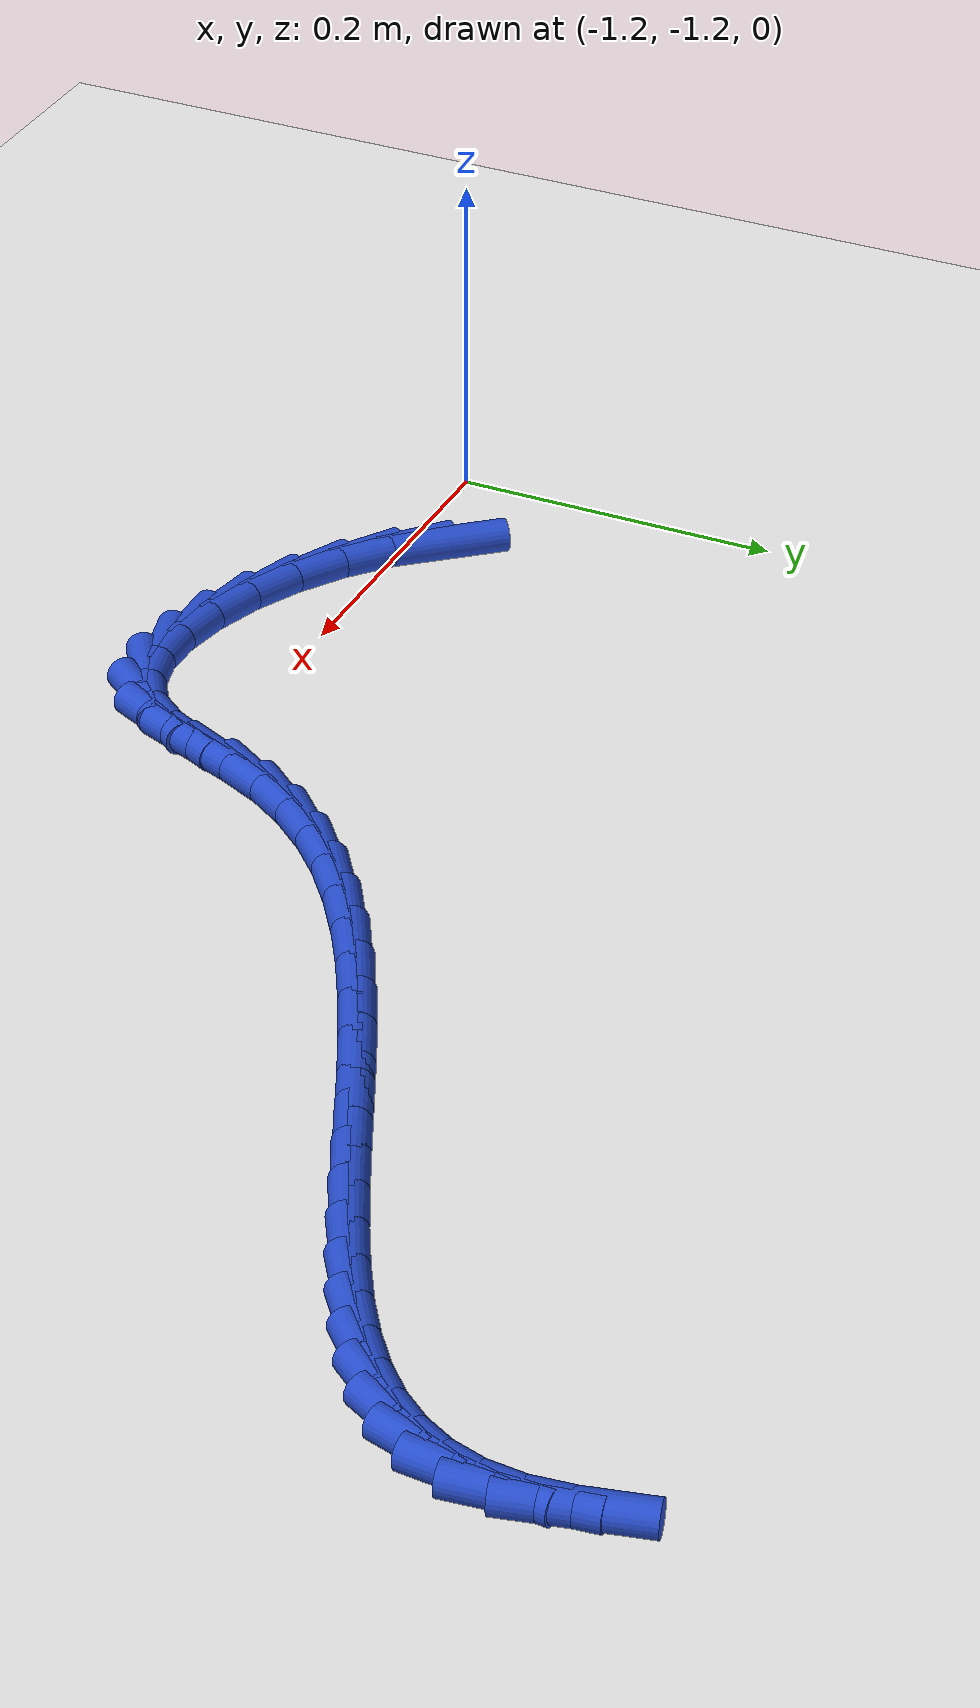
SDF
<sdf version="1.6">
 <world name="default">
  <model name="ground_plane">
   <static>1</static>
   <link name="link">
    <collision name="collision">
     <geometry><plane><normal>0 0 1</normal><size>100 100</size></plane></geometry>
     <surface><friction><ode><mu>100</mu><mu2>50</mu2></ode></friction></surface>
    </collision>
    <visual name="visual">
     <cast_shadows>0</cast_shadows>
     <geometry><plane><normal>0 0 1</normal><size>100 100</size></plane></geometry>
     <material>
      <script><uri>file://media/materials/scripts/gazebo.material</uri><name>Gazebo/WhiteGlow</name></script>
     </material>
    </visual>
   </link>
  </model>
  <model name="line">
   <link name="link_221">
    <pose>-1.1108003090482503 -1.1748294771301653 0.01 0 1.57 -0.8689991256285351</pose>
    <collision name="collision">
     <geometry><cylinder><radius>0.01</radius><length>0.08</length></cylinder></geometry>
    </collision>
    <visual name="visual">
     <material>
      <script><name>Gazebo/Blue</name><uri>file://media/materials/scripts/gazebo.material</uri></script>
     </material>
     <geometry><cylinder><radius>0.01</radius><length>0.08</length></cylinder></geometry>
    </visual>
   </link>
   <link name="link_222">
    <pose>-1.090640683657162 -1.198676713574175 0.01 0 1.57 -0.7108364115734258</pose>
    <collision name="collision">
     <geometry><cylinder><radius>0.01</radius><length>0.08</length></cylinder></geometry>
    </collision>
    <visual name="visual">
     <material>
      <script><name>Gazebo/Blue</name><uri>file://media/materials/scripts/gazebo.material</uri></script>
     </material>
     <geometry><cylinder><radius>0.01</radius><length>0.08</length></cylinder></geometry>
    </visual>
   </link>
   <link name="link_223">
    <pose>-1.0661124544059375 -1.219795127870323 0.01 0 1.57 -0.5735848228336868</pose>
    <collision name="collision">
     <geometry><cylinder><radius>0.01</radius><length>0.08</length></cylinder></geometry>
    </collision>
    <visual name="visual">
     <material>
      <script><name>Gazebo/Blue</name><uri>file://media/materials/scripts/gazebo.material</uri></script>
     </material>
     <geometry><cylinder><radius>0.01</radius><length>0.08</length></cylinder></geometry>
    </visual>
   </link>
   <link name="link_224">
    <pose>-1.0384692837865328 -1.237653661978566 0.01 0 1.57 -0.4449124804448995</pose>
    <collision name="collision">
     <geometry><cylinder><radius>0.01</radius><length>0.08</length></cylinder></geometry>
    </collision>
    <visual name="visual">
     <material>
      <script><name>Gazebo/Blue</name><uri>file://media/materials/scripts/gazebo.material</uri></script>
     </material>
     <geometry><cylinder><radius>0.01</radius><length>0.08</length></cylinder></geometry>
    </visual>
   </link>
   <link name="link_225">
    <pose>-1.0089648342909046 -1.2517212578588608 0.01 0 1.57 -0.3130052605132182</pose>
    <collision name="collision">
     <geometry><cylinder><radius>0.01</radius><length>0.08</length></cylinder></geometry>
    </collision>
    <visual name="visual">
     <material>
      <script><name>Gazebo/Blue</name><uri>file://media/materials/scripts/gazebo.material</uri></script>
     </material>
     <geometry><cylinder><radius>0.01</radius><length>0.08</length></cylinder></geometry>
    </visual>
   </link>
   <link name="link_226">
    <pose>-0.9788527684110084 -1.261466857471164 0.01 0 1.57 -0.1645391295733675</pose>
    <collision name="collision">
     <geometry><cylinder><radius>0.01</radius><length>0.08</length></cylinder></geometry>
    </collision>
    <visual name="visual">
     <material>
      <script><name>Gazebo/Blue</name><uri>file://media/materials/scripts/gazebo.material</uri></script>
     </material>
     <geometry><cylinder><radius>0.01</radius><length>0.08</length></cylinder></geometry>
    </visual>
   </link>
   <link name="link_227">
    <pose>-0.9493867486388008 -1.266359402775432 0.01 0 1.57 0.017830276486228085</pose>
    <collision name="collision">
     <geometry><cylinder><radius>0.01</radius><length>0.08</length></cylinder></geometry>
    </collision>
    <visual name="visual">
     <material>
      <script><name>Gazebo/Blue</name><uri>file://media/materials/scripts/gazebo.material</uri></script>
     </material>
     <geometry><cylinder><radius>0.01</radius><length>0.08</length></cylinder></geometry>
    </visual>
   </link>
   <link name="link_228">
    <pose>-0.9218204374662375 -1.2658678357316206 0.01 0 1.57 0.256644741322709</pose>
    <collision name="collision">
     <geometry><cylinder><radius>0.01</radius><length>0.08</length></cylinder></geometry>
    </collision>
    <visual name="visual">
     <material>
      <script><name>Gazebo/Blue</name><uri>file://media/materials/scripts/gazebo.material</uri></script>
     </material>
     <geometry><cylinder><radius>0.01</radius><length>0.08</length></cylinder></geometry>
    </visual>
   </link>
   <link name="link_229">
    <pose>-0.8974074973852747 -1.259461098299687 0.01 0 1.57 0.5710553982535079</pose>
    <collision name="collision">
     <geometry><cylinder><radius>0.01</radius><length>0.08</length></cylinder></geometry>
    </collision>
    <visual name="visual">
     <material>
      <script><name>Gazebo/Blue</name><uri>file://media/materials/scripts/gazebo.material</uri></script>
     </material>
     <geometry><cylinder><radius>0.01</radius><length>0.08</length></cylinder></geometry>
    </visual>
   </link>
   <link name="link_230">
    <pose>-0.8774015908878687 -1.2466081324395877 0.01 0 1.57 0.920669516927172</pose>
    <collision name="collision">
     <geometry><cylinder><radius>0.01</radius><length>0.08</length></cylinder></geometry>
    </collision>
    <visual name="visual">
     <material>
      <script><name>Gazebo/Blue</name><uri>file://media/materials/scripts/gazebo.material</uri></script>
     </material>
     <geometry><cylinder><radius>0.01</radius><length>0.08</length></cylinder></geometry>
    </visual>
   </link>
   <link name="link_231">
    <pose>-0.8626012211697354 -1.2271443214500295 0.01 0 1.57 1.1340947372605024</pose>
    <collision name="collision">
     <geometry><cylinder><radius>0.01</radius><length>0.08</length></cylinder></geometry>
    </collision>
    <visual name="visual">
     <material>
      <script><name>Gazebo/Blue</name><uri>file://media/materials/scripts/gazebo.material</uri></script>
     </material>
     <geometry><cylinder><radius>0.01</radius><length>0.08</length></cylinder></geometry>
    </visual>
   </link>
   <link name="link_232">
    <pose>-0.8512964628576275 -1.202924543629746 0.01 0 1.57 1.1966017671710365</pose>
    <collision name="collision">
     <geometry><cylinder><radius>0.01</radius><length>0.08</length></cylinder></geometry>
    </collision>
    <visual name="visual">
     <material>
      <script><name>Gazebo/Blue</name><uri>file://media/materials/scripts/gazebo.material</uri></script>
     </material>
     <geometry><cylinder><radius>0.01</radius><length>0.08</length></cylinder></geometry>
    </visual>
   </link>
   <link name="link_233">
    <pose>-0.8409179159818152 -1.17649562628161 0.01 0 1.57 1.1394024818872177</pose>
    <collision name="collision">
     <geometry><cylinder><radius>0.01</radius><length>0.08</length></cylinder></geometry>
    </collision>
    <visual name="visual">
     <material>
      <script><name>Gazebo/Blue</name><uri>file://media/materials/scripts/gazebo.material</uri></script>
     </material>
     <geometry><cylinder><radius>0.01</radius><length>0.08</length></cylinder></geometry>
    </visual>
   </link>
   <link name="link_234">
    <pose>-0.8289043419718073 -1.1503966995505372 0.01 0 1.57 1.0067088430000346</pose>
    <collision name="collision">
     <geometry><cylinder><radius>0.01</radius><length>0.08</length></cylinder></geometry>
    </collision>
    <visual name="visual">
     <material>
      <script><name>Gazebo/Blue</name><uri>file://media/materials/scripts/gazebo.material</uri></script>
     </material>
     <geometry><cylinder><radius>0.01</radius><length>0.08</length></cylinder></geometry>
    </visual>
   </link>
   <link name="link_235">
    <pose>-0.8136467396565422 -1.1262800451238613 0.01 0 1.57 0.8794590887865107</pose>
    <collision name="collision">
     <geometry><cylinder><radius>0.01</radius><length>0.08</length></cylinder></geometry>
    </collision>
    <visual name="visual">
     <material>
      <script><name>Gazebo/Blue</name><uri>file://media/materials/scripts/gazebo.material</uri></script>
     </material>
     <geometry><cylinder><radius>0.01</radius><length>0.08</length></cylinder></geometry>
    </visual>
   </link>
   <link name="link_236">
    <pose>-0.7953206082873523 -1.1041359836610085 0.01 0 1.57 0.7694769699824198</pose>
    <collision name="collision">
     <geometry><cylinder><radius>0.01</radius><length>0.08</length></cylinder></geometry>
    </collision>
    <visual name="visual">
     <material>
      <script><name>Gazebo/Blue</name><uri>file://media/materials/scripts/gazebo.material</uri></script>
     </material>
     <geometry><cylinder><radius>0.01</radius><length>0.08</length></cylinder></geometry>
    </visual>
   </link>
   <link name="link_237">
    <pose>-0.7742977002868298 -1.0837720591080213 0.01 0 1.57 0.6772924265744491</pose>
    <collision name="collision">
     <geometry><cylinder><radius>0.01</radius><length>0.08</length></cylinder></geometry>
    </collision>
    <visual name="visual">
     <material>
      <script><name>Gazebo/Blue</name><uri>file://media/materials/scripts/gazebo.material</uri></script>
     </material>
     <geometry><cylinder><radius>0.01</radius><length>0.08</length></cylinder></geometry>
    </visual>
   </link>
   <link name="link_238">
    <pose>-0.7509497680775671 -1.0649958154109431 0.01 0 1.57 0.6019233565270753</pose>
    <collision name="collision">
     <geometry><cylinder><radius>0.01</radius><length>0.08</length></cylinder></geometry>
    </collision>
    <visual name="visual">
     <material>
      <script><name>Gazebo/Blue</name><uri>file://media/materials/scripts/gazebo.material</uri></script>
     </material>
     <geometry><cylinder><radius>0.01</radius><length>0.08</length></cylinder></geometry>
    </visual>
   </link>
   <link name="link_239">
    <pose>-0.7256485640821569 -1.0476147965158173 0.01 0 1.57 0.5417481839827372</pose>
    <collision name="collision">
     <geometry><cylinder><radius>0.01</radius><length>0.08</length></cylinder></geometry>
    </collision>
    <visual name="visual">
     <material>
      <script><name>Gazebo/Blue</name><uri>file://media/materials/scripts/gazebo.material</uri></script>
     </material>
     <geometry><cylinder><radius>0.01</radius><length>0.08</length></cylinder></geometry>
    </visual>
   </link>
   <link name="link_240">
    <pose>-0.6987658407231911 -1.0314365463686865 0.01 0 1.57 0.4950779400634742</pose>
    <collision name="collision">
     <geometry><cylinder><radius>0.01</radius><length>0.08</length></cylinder></geometry>
    </collision>
    <visual name="visual">
     <material>
      <script><name>Gazebo/Blue</name><uri>file://media/materials/scripts/gazebo.material</uri></script>
     </material>
     <geometry><cylinder><radius>0.01</radius><length>0.08</length></cylinder></geometry>
    </visual>
   </link>
   <link name="link_241">
    <pose>-0.6706733504232625 -1.0162686089155941 0.01 0 1.57 0.4604577608821292</pose>
    <collision name="collision">
     <geometry><cylinder><radius>0.01</radius><length>0.08</length></cylinder></geometry>
    </collision>
    <visual name="visual">
     <material>
      <script><name>Gazebo/Blue</name><uri>file://media/materials/scripts/gazebo.material</uri></script>
     </material>
     <geometry><cylinder><radius>0.01</radius><length>0.08</length></cylinder></geometry>
    </visual>
   </link>
   <link name="link_242">
    <pose>-0.6417428456049633 -1.0019185281025826 0.01 0 1.57 0.43680002910425914</pose>
    <collision name="collision">
     <geometry><cylinder><radius>0.01</radius><length>0.08</length></cylinder></geometry>
    </collision>
    <visual name="visual">
     <material>
      <script><name>Gazebo/Blue</name><uri>file://media/materials/scripts/gazebo.material</uri></script>
     </material>
     <geometry><cylinder><radius>0.01</radius><length>0.08</length></cylinder></geometry>
    </visual>
   </link>
   <link name="link_243">
    <pose>-0.612346078690886 -0.9881938478756955 0.01 0 1.57 0.4234363828116752</pose>
    <collision name="collision">
     <geometry><cylinder><radius>0.01</radius><length>0.08</length></cylinder></geometry>
    </collision>
    <visual name="visual">
     <material>
      <script><name>Gazebo/Blue</name><uri>file://media/materials/scripts/gazebo.material</uri></script>
     </material>
     <geometry><cylinder><radius>0.01</radius><length>0.08</length></cylinder></geometry>
    </visual>
   </link>
   <link name="link_244">
    <pose>-0.5828548021036228 -0.9749021121809757 0.01 0 1.57 0.420144446261372</pose>
    <collision name="collision">
     <geometry><cylinder><radius>0.01</radius><length>0.08</length></cylinder></geometry>
    </collision>
    <visual name="visual">
     <material>
      <script><name>Gazebo/Blue</name><uri>file://media/materials/scripts/gazebo.material</uri></script>
     </material>
     <geometry><cylinder><radius>0.01</radius><length>0.08</length></cylinder></geometry>
    </visual>
   </link>
   <link name="link_245">
    <pose>-0.5536407682657665 -0.9618508649644661 0.01 0 1.57 0.4271816911942964</pose>
    <collision name="collision">
     <geometry><cylinder><radius>0.01</radius><length>0.08</length></cylinder></geometry>
    </collision>
    <visual name="visual">
     <material>
      <script><name>Gazebo/Blue</name><uri>file://media/materials/scripts/gazebo.material</uri></script>
     </material>
     <geometry><cylinder><radius>0.01</radius><length>0.08</length></cylinder></geometry>
    </visual>
   </link>
   <link name="link_246">
    <pose>-0.525075729599909 -0.9488476501722104 0.01 0 1.57 0.44534538252176986</pose>
    <collision name="collision">
     <geometry><cylinder><radius>0.01</radius><length>0.08</length></cylinder></geometry>
    </collision>
    <visual name="visual">
     <material>
      <script><name>Gazebo/Blue</name><uri>file://media/materials/scripts/gazebo.material</uri></script>
     </material>
     <geometry><cylinder><radius>0.01</radius><length>0.08</length></cylinder></geometry>
    </visual>
   </link>
   <link name="link_247">
    <pose>-0.4975314385286427 -0.9357000117502505 0.01 0 1.57 0.47606935579822646</pose>
    <collision name="collision">
     <geometry><cylinder><radius>0.01</radius><length>0.08</length></cylinder></geometry>
    </collision>
    <visual name="visual">
     <material>
      <script><name>Gazebo/Blue</name><uri>file://media/materials/scripts/gazebo.material</uri></script>
     </material>
     <geometry><cylinder><radius>0.01</radius><length>0.08</length></cylinder></geometry>
    </visual>
   </link>
   <link name="link_248">
    <pose>-0.4713796474745612 -0.922215493644631 0.01 0 1.57 0.5215574815375128</pose>
    <collision name="collision">
     <geometry><cylinder><radius>0.01</radius><length>0.08</length></cylinder></geometry>
    </collision>
    <visual name="visual">
     <material>
      <script><name>Gazebo/Blue</name><uri>file://media/materials/scripts/gazebo.material</uri></script>
     </material>
     <geometry><cylinder><radius>0.01</radius><length>0.08</length></cylinder></geometry>
    </visual>
   </link>
   <link name="link_249">
    <pose>-0.446992108860255 -0.9082016398013935 0.01 0 1.57 0.584925160909031</pose>
    <collision name="collision">
     <geometry><cylinder><radius>0.01</radius><length>0.08</length></cylinder></geometry>
    </collision>
    <visual name="visual">
     <material>
      <script><name>Gazebo/Blue</name><uri>file://media/materials/scripts/gazebo.material</uri></script>
     </material>
     <geometry><cylinder><radius>0.01</radius><length>0.08</length></cylinder></geometry>
    </visual>
   </link>
   <link name="link_250">
    <pose>-0.4247405751083173 -0.8934659941665816 0.01 0 1.57 0.6702427986818646</pose>
    <collision name="collision">
     <geometry><cylinder><radius>0.01</radius><length>0.08</length></cylinder></geometry>
    </collision>
    <visual name="visual">
     <material>
      <script><name>Gazebo/Blue</name><uri>file://media/materials/scripts/gazebo.material</uri></script>
     </material>
     <geometry><cylinder><radius>0.01</radius><length>0.08</length></cylinder></geometry>
    </visual>
   </link>
   <link name="link_251">
    <pose>-0.4049967986413406 -0.8778161006862382 0.01 0 1.57 0.7821957171107591</pose>
    <collision name="collision">
     <geometry><cylinder><radius>0.01</radius><length>0.08</length></cylinder></geometry>
    </collision>
    <visual name="visual">
     <material>
      <script><name>Gazebo/Blue</name><uri>file://media/materials/scripts/gazebo.material</uri></script>
     </material>
     <geometry><cylinder><radius>0.01</radius><length>0.08</length></cylinder></geometry>
    </visual>
   </link>
   <link name="link_252">
    <pose>-0.3881325318819171 -0.8610595033064066 0.01 0 1.57 0.9247767254364937</pose>
    <collision name="collision">
     <geometry><cylinder><radius>0.01</radius><length>0.08</length></cylinder></geometry>
    </collision>
    <visual name="visual">
     <material>
      <script><name>Gazebo/Blue</name><uri>file://media/materials/scripts/gazebo.material</uri></script>
     </material>
     <geometry><cylinder><radius>0.01</radius><length>0.08</length></cylinder></geometry>
    </visual>
   </link>
   <link name="link_253">
    <pose>-0.3745195272526394 -0.8430037459731295 0.01 0 1.57 1.0983354768507487</pose>
    <collision name="collision">
     <geometry><cylinder><radius>0.01</radius><length>0.08</length></cylinder></geometry>
    </collision>
    <visual name="visual">
     <material>
      <script><name>Gazebo/Blue</name><uri>file://media/materials/scripts/gazebo.material</uri></script>
     </material>
     <geometry><cylinder><radius>0.01</radius><length>0.08</length></cylinder></geometry>
    </visual>
   </link>
   <link name="link_254">
    <pose>-0.3645295371760997 -0.8234563726324502 0.01 0 1.57 1.2955869222741283</pose>
    <collision name="collision">
     <geometry><cylinder><radius>0.01</radius><length>0.08</length></cylinder></geometry>
    </collision>
    <visual name="visual">
     <material>
      <script><name>Gazebo/Blue</name><uri>file://media/materials/scripts/gazebo.material</uri></script>
     </material>
     <geometry><cylinder><radius>0.01</radius><length>0.08</length></cylinder></geometry>
    </visual>
   </link>
   <link name="link_255">
    <pose>-0.35853431407489067 -0.8022249272304119 0.01 0 1.57 1.5004303680298599</pose>
    <collision name="collision">
     <geometry><cylinder><radius>0.01</radius><length>0.08</length></cylinder></geometry>
    </collision>
    <visual name="visual">
     <material>
      <script><name>Gazebo/Blue</name><uri>file://media/materials/scripts/gazebo.material</uri></script>
     </material>
     <geometry><cylinder><radius>0.01</radius><length>0.08</length></cylinder></geometry>
    </visual>
   </link>
   <link name="link_256">
    <pose>-0.3569056103716045 -0.7791169537130573 0.01 0 1.57 -1.4497398082428126</pose>
    <collision name="collision">
     <geometry><cylinder><radius>0.01</radius><length>0.08</length></cylinder></geometry>
    </collision>
    <visual name="visual">
     <material>
      <script><name>Gazebo/Blue</name><uri>file://media/materials/scripts/gazebo.material</uri></script>
     </material>
     <geometry><cylinder><radius>0.01</radius><length>0.08</length></cylinder></geometry>
    </visual>
   </link>
   <link name="link_257">
    <pose>-0.3599659739570859 -0.75396011419937 0.01 0 1.57 -1.3378325546558527</pose>
    <collision name="collision">
     <geometry><cylinder><radius>0.01</radius><length>0.08</length></cylinder></geometry>
    </collision>
    <visual name="visual">
     <material>
      <script><name>Gazebo/Blue</name><uri>file://media/materials/scripts/gazebo.material</uri></script>
     </material>
     <geometry><cylinder><radius>0.01</radius><length>0.08</length></cylinder></geometry>
    </visual>
   </link>
  </model>
 </world>
</sdf>
